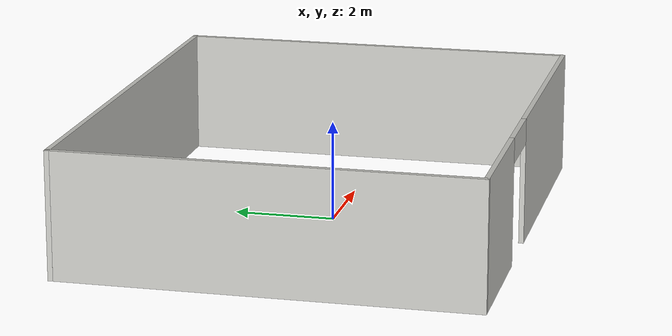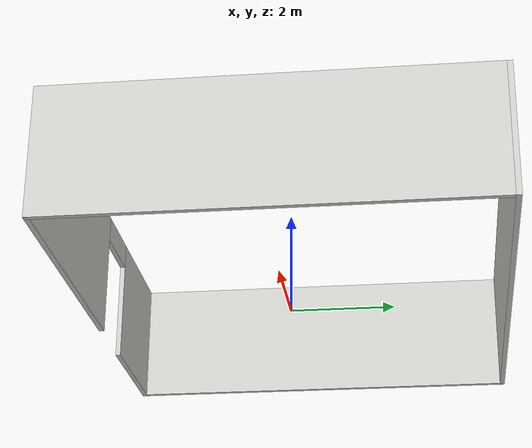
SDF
<?xml version='1.0'?>
<sdf version='1.6'>
  <model name='food_handling_unit'>
    <pose frame=''>-0.14 0.141 0 0 -0 0</pose>
    <link name='Wall_10'>
      <collision name='Wall_10_Collision'>
        <geometry>
          <box>
            <size>8.2 0.1 2.5</size>
          </box>
        </geometry>
        <pose frame=''>0 0 1.25 0 -0 0</pose>
      </collision>
      <visual name='Wall_10_Visual'>
        <pose frame=''>0 0 1.25 0 -0 0</pose>
        <geometry>
          <box>
            <size>8.2 0.1 2.5</size>
          </box>
        </geometry>
        <material>
          <script>
            <uri>file://media/materials/scripts/gazebo.material</uri>
            <name>Gazebo/CeilingTiled</name>
          </script>
          <ambient>1 1 1 1</ambient>
        </material>
        <meta>
          <layer>0</layer>
        </meta>
      </visual>
      <pose frame=''>4.8 0 0 0 -0 -1.5708</pose>
    </link>
    <link name='Wall_11'>
      <pose frame=''>-0 -4.05 0 0 -0 3.14159</pose>
      <visual name='Wall_11_Visual_0'>
        <pose frame=''>-2.13443 0 1.25 0 -0 0</pose>
        <geometry>
          <box>
            <size>5.43069 0.1 2.5</size>
          </box>
        </geometry>
        <material>
          <script>
            <uri>file://media/materials/scripts/gazebo.material</uri>
            <name>Gazebo/CeilingTiled</name>
          </script>
          <ambient>1 1 1 1</ambient>
        </material>
        <meta>
          <layer>0</layer>
        </meta>
      </visual>
      <collision name='Wall_11_Collision_0'>
        <geometry>
          <box>
            <size>5.43069 0.1 2.5</size>
          </box>
        </geometry>
        <pose frame=''>-2.13443 0 1.25 0 -0 0</pose>
      </collision>
      <visual name='Wall_11_Visual_1'>
        <pose frame=''>3.43384 0 1.25 0 -0 0</pose>
        <geometry>
          <box>
            <size>2.83185 0.1 2.5</size>
          </box>
        </geometry>
        <material>
          <script>
            <uri>file://media/materials/scripts/gazebo.material</uri>
            <name>Gazebo/CeilingTiled</name>
          </script>
          <ambient>1 1 1 1</ambient>
        </material>
        <meta>
          <layer>0</layer>
        </meta>
      </visual>
      <collision name='Wall_11_Collision_1'>
        <geometry>
          <box>
            <size>2.83185 0.1 2.5</size>
          </box>
        </geometry>
        <pose frame=''>3.43384 0 1.25 0 -0 0</pose>
      </collision>
      <visual name='Wall_11_Visual_2'>
        <pose frame=''>1.29942 0 2.25 0 -0 0</pose>
        <geometry>
          <box>
            <size>1.437 0.1 0.5</size>
          </box>
        </geometry>
        <material>
          <script>
            <uri>file://media/materials/scripts/gazebo.material</uri>
            <name>Gazebo/CeilingTiled</name>
          </script>
          <ambient>1 1 1 1</ambient>
        </material>
        <meta>
          <layer>0</layer>
        </meta>
      </visual>
      <collision name='Wall_11_Collision_2'>
        <geometry>
          <box>
            <size>1.437 0.1 0.5</size>
          </box>
        </geometry>
        <pose frame=''>1.29942 0 2.25 0 -0 0</pose>
      </collision>
    </link>
    <link name='Wall_12'>
      <collision name='Wall_12_Collision'>
        <geometry>
          <box>
            <size>8.2 0.1 2.5</size>
          </box>
        </geometry>
        <pose frame=''>0 0 1.25 0 -0 0</pose>
      </collision>
      <visual name='Wall_12_Visual'>
        <pose frame=''>0 0 1.25 0 -0 0</pose>
        <geometry>
          <box>
            <size>8.2 0.1 2.5</size>
          </box>
        </geometry>
        <material>
          <script>
            <uri>file://media/materials/scripts/gazebo.material</uri>
            <name>Gazebo/CeilingTiled</name>
          </script>
          <ambient>1 1 1 1</ambient>
        </material>
        <meta>
          <layer>0</layer>
        </meta>
      </visual>
      <pose frame=''>-4.8 0 0 0 -0 1.5708</pose>
    </link>
    <link name='Wall_9'>
      <collision name='Wall_9_Collision'>
        <geometry>
          <box>
            <size>9.70046 0.1 2.5</size>
          </box>
        </geometry>
        <pose frame=''>0 0 1.25 0 -0 0</pose>
      </collision>
      <visual name='Wall_9_Visual'>
        <pose frame=''>0 0 1.25 0 -0 0</pose>
        <geometry>
          <box>
            <size>9.70046 0.1 2.5</size>
          </box>
        </geometry>
        <material>
          <script>
            <uri>file://media/materials/scripts/gazebo.material</uri>
            <name>Gazebo/CeilingTiled</name>
          </script>
          <ambient>1 1 1 1</ambient>
        </material>
        <meta>
          <layer>0</layer>
        </meta>
      </visual>
      <pose frame=''>-0 4.05 0 0 -0 0</pose>
    </link>
    <static>1</static>
  </model>
</sdf>
